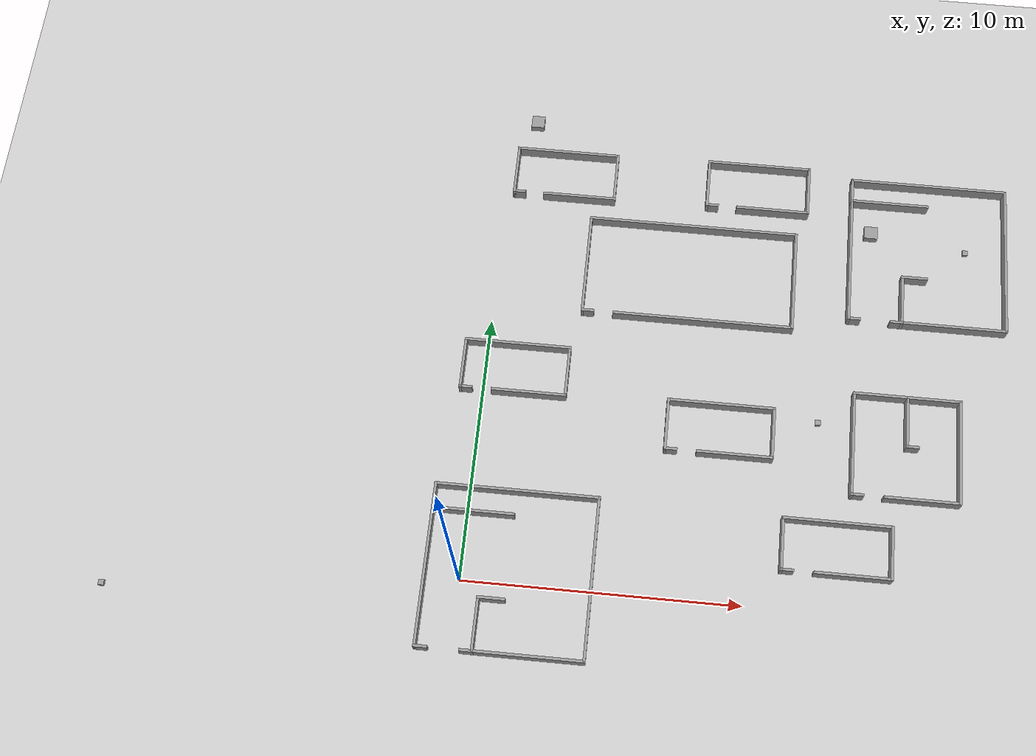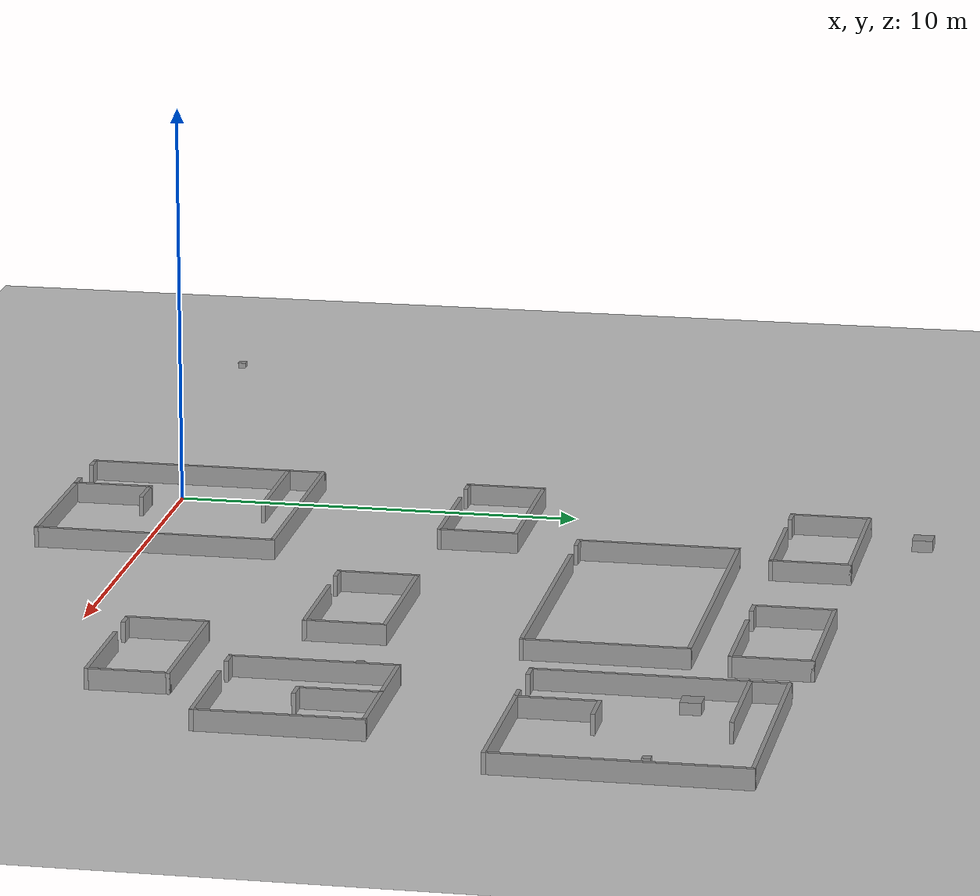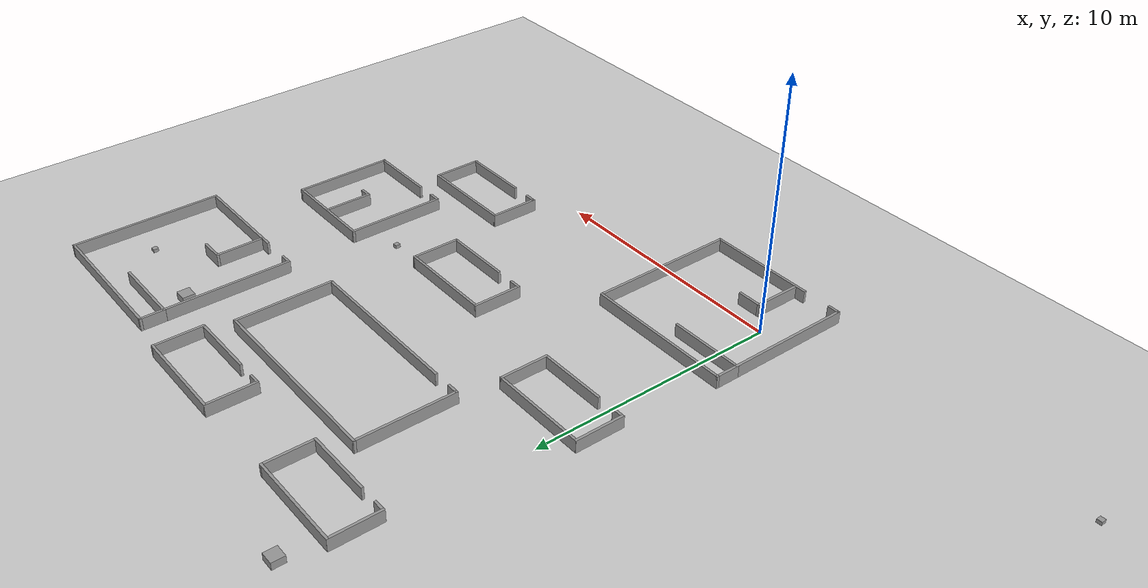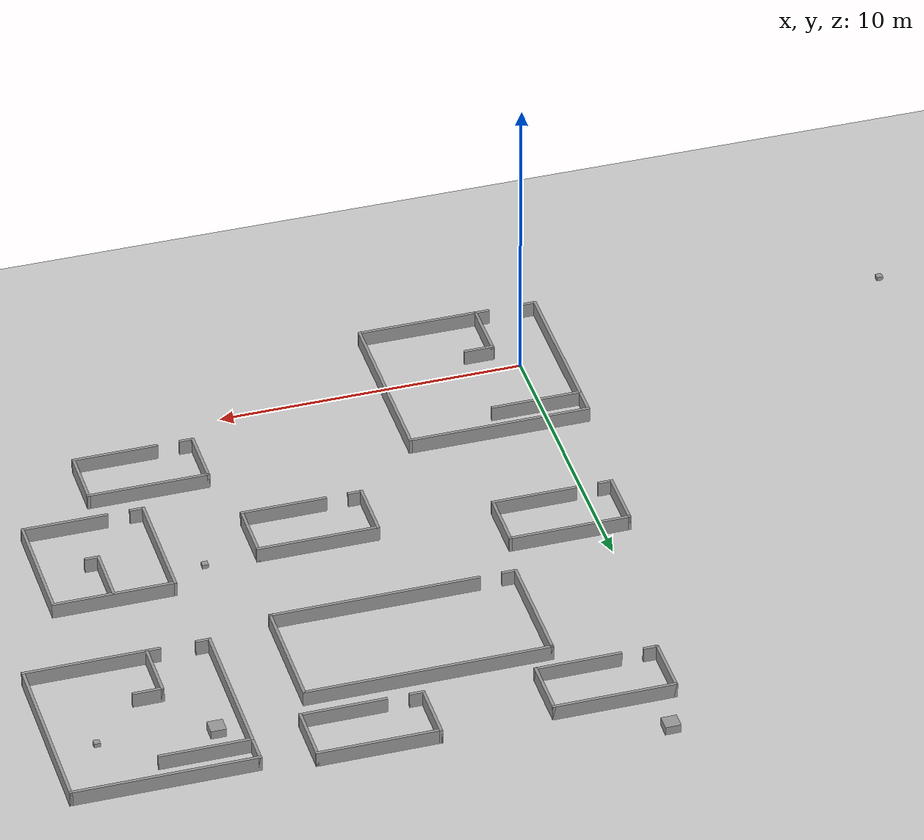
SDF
<sdf version="1.6">
 <world name="default">
  <model name="ground_plane">
   <static>1</static>
   <link name="link">
    <collision name="collision">
     <geometry><plane><normal>0 0 1</normal><size>40 40</size></plane></geometry>
     <surface>
      <contact><collide_bitmask>65535</collide_bitmask></contact>
      <friction><ode><mu>100</mu><mu2>50</mu2></ode></friction>
     </surface>
     <max_contacts>15</max_contacts>
    </collision>
    <visual name="visual">
     <cast_shadows>0</cast_shadows>
     <geometry><plane><normal>0 0 1</normal><size>40 40</size></plane></geometry>
     <material>
      <script><uri>file://media/materials/scripts/gazebo.material</uri><name>Gazebo/Grey</name></script>
     </material>
    </visual>
   </link>
  </model>
  <model name="shape3">
   <pose>7.3 12.6 0 0 -0 0</pose>
   <link name="Wall_11">
    <collision name="Wall_11_Collision">
     <geometry><box><size>4 0.1 0.5</size></box></geometry>
     <pose>0 0 0.25 0 -0 0</pose>
    </collision>
    <visual name="Wall_11_Visual">
     <pose>0 0 0.25 0 -0 0</pose>
     <geometry><box><size>4 0.1 0.5</size></box></geometry>
     <material>
      <script><uri>file://media/materials/scripts/gazebo.material</uri><name>Gazebo/Grey</name></script>
      <ambient>1 1 1 1</ambient>
     </material>
     <meta><layer>0</layer></meta>
    </visual>
    <pose>-3.95 0 0 0 -0 -1.5708</pose>
   </link>
   <link name="Wall_12">
    <collision name="Wall_12_Collision">
     <geometry><box><size>0.5 0.1 0.5</size></box></geometry>
     <pose>0 0 0.25 0 -0 0</pose>
    </collision>
    <visual name="Wall_12_Visual">
     <pose>0 0 0.25 0 -0 0</pose>
     <geometry><box><size>0.5 0.1 0.5</size></box></geometry>
     <material>
      <script><uri>file://media/materials/scripts/gazebo.material</uri><name>Gazebo/Grey</name></script>
      <ambient>1 1 1 1</ambient>
     </material>
     <meta><layer>0</layer></meta>
    </visual>
    <pose>-3.75 -1.95 0 0 -0 0</pose>
   </link>
   <link name="Wall_7">
    <collision name="Wall_7_Collision">
     <geometry><box><size>8 0.1 0.5</size></box></geometry>
     <pose>0 0 0.25 0 -0 0</pose>
    </collision>
    <visual name="Wall_7_Visual">
     <pose>0 0 0.25 0 -0 0</pose>
     <geometry><box><size>8 0.1 0.5</size></box></geometry>
     <material>
      <script><uri>file://media/materials/scripts/gazebo.material</uri><name>Gazebo/Grey</name></script>
      <ambient>1 1 1 1</ambient>
     </material>
     <meta><layer>0</layer></meta>
    </visual>
    <pose>-0 1.95 0 0 -0 0</pose>
   </link>
   <link name="Wall_8">
    <collision name="Wall_8_Collision">
     <geometry><box><size>4 0.1 0.5</size></box></geometry>
     <pose>0 0 0.25 0 -0 0</pose>
    </collision>
    <visual name="Wall_8_Visual">
     <pose>0 0 0.25 0 -0 0</pose>
     <geometry><box><size>4 0.1 0.5</size></box></geometry>
     <material>
      <script><uri>file://media/materials/scripts/gazebo.material</uri><name>Gazebo/Grey</name></script>
      <ambient>1 1 1 1</ambient>
     </material>
     <meta><layer>0</layer></meta>
    </visual>
    <pose>3.95 0 0 0 -0 -1.5708</pose>
   </link>
   <link name="Wall_9">
    <collision name="Wall_9_Collision">
     <geometry><box><size>6.8 0.1 0.5</size></box></geometry>
     <pose>0 0 0.25 0 -0 0</pose>
    </collision>
    <visual name="Wall_9_Visual">
     <pose>0 0 0.25 0 -0 0</pose>
     <geometry><box><size>6.8 0.1 0.5</size></box></geometry>
     <material>
      <script><uri>file://media/materials/scripts/gazebo.material</uri><name>Gazebo/Grey</name></script>
      <ambient>1 1 1 1</ambient>
     </material>
     <meta><layer>0</layer></meta>
    </visual>
    <pose>0.6 -1.95 0 0 -0 3.14159</pose>
   </link>
   <static>1</static>
  </model>
  <model name="shape2">
   <pose>13.2 2.3 0 0 -0 0</pose>
   <link name="Wall_0">
    <collision name="Wall_0_Collision">
     <geometry><box><size>3.98685 0.1 0.5</size></box></geometry>
     <pose>0 0 0.25 0 -0 0</pose>
    </collision>
    <visual name="Wall_0_Visual">
     <pose>0 0 0.25 0 -0 0</pose>
     <geometry><box><size>3.98685 0.1 0.5</size></box></geometry>
     <material>
      <script><uri>file://media/materials/scripts/gazebo.material</uri><name>Gazebo/Grey</name></script>
      <ambient>1 1 1 1</ambient>
     </material>
     <meta><layer>0</layer></meta>
    </visual>
    <pose>0.003288 0.95 0 0 -0 0</pose>
   </link>
   <link name="Wall_1">
    <collision name="Wall_1_Collision">
     <geometry><box><size>2 0.1 0.5</size></box></geometry>
     <pose>0 0 0.25 0 -0 0</pose>
    </collision>
    <visual name="Wall_1_Visual">
     <pose>0 0 0.25 0 -0 0</pose>
     <geometry><box><size>2 0.1 0.5</size></box></geometry>
     <material>
      <script><uri>file://media/materials/scripts/gazebo.material</uri><name>Gazebo/Grey</name></script>
      <ambient>1 1 1 1</ambient>
     </material>
     <meta><layer>0</layer></meta>
    </visual>
    <pose>1.94671 0 0 0 -0 -1.5708</pose>
   </link>
   <link name="Wall_2">
    <collision name="Wall_2_Collision">
     <geometry><box><size>2.8 0.1 0.5</size></box></geometry>
     <pose>0 0 0.25 0 -0 0</pose>
    </collision>
    <visual name="Wall_2_Visual">
     <pose>0 0 0.25 0 -0 0</pose>
     <geometry><box><size>2.8 0.1 0.5</size></box></geometry>
     <material>
      <script><uri>file://media/materials/scripts/gazebo.material</uri><name>Gazebo/Grey</name></script>
      <ambient>1 1 1 1</ambient>
     </material>
     <meta><layer>0</layer></meta>
    </visual>
    <pose>0.596712 -0.95 0 0 -0 3.14159</pose>
   </link>
   <link name="Wall_4">
    <collision name="Wall_4_Collision">
     <geometry><box><size>2 0.1 0.5</size></box></geometry>
     <pose>0 0 0.25 0 -0 0</pose>
    </collision>
    <visual name="Wall_4_Visual">
     <pose>0 0 0.25 0 -0 0</pose>
     <geometry><box><size>2 0.1 0.5</size></box></geometry>
     <material>
      <script><uri>file://media/materials/scripts/gazebo.material</uri><name>Gazebo/Grey</name></script>
      <ambient>1 1 1 1</ambient>
     </material>
     <meta><layer>0</layer></meta>
    </visual>
    <pose>-1.94671 0 0 0 -0 -1.5708</pose>
   </link>
   <link name="Wall_5">
    <collision name="Wall_5_Collision">
     <geometry><box><size>0.5 0.1 0.5</size></box></geometry>
     <pose>0 0 0.25 0 -0 0</pose>
    </collision>
    <visual name="Wall_5_Visual">
     <pose>0 0 0.25 0 -0 0</pose>
     <geometry><box><size>0.5 0.1 0.5</size></box></geometry>
     <material>
      <script><uri>file://media/materials/scripts/gazebo.material</uri><name>Gazebo/Grey</name></script>
      <ambient>1 1 1 1</ambient>
     </material>
     <meta><layer>0</layer></meta>
    </visual>
    <pose>-1.74671 -0.95 0 0 -0 0</pose>
   </link>
   <static>1</static>
  </model>
  <model name="shape5">
   <pose>1.7 0.4 0 0 -0 0</pose>
   <link name="Wall_10">
    <collision name="Wall_10_Collision">
     <geometry><box><size>6 0.1 0.5</size></box></geometry>
     <pose>0 0 0.25 0 -0 0</pose>
    </collision>
    <visual name="Wall_10_Visual">
     <pose>0 0 0.25 0 -0 0</pose>
     <geometry><box><size>6 0.1 0.5</size></box></geometry>
     <material>
      <script><uri>file://media/materials/scripts/gazebo.material</uri><name>Gazebo/Grey</name></script>
      <ambient>1 1 1 1</ambient>
     </material>
     <meta><layer>0</layer></meta>
    </visual>
    <pose>-0 2.95 0 0 -0 0</pose>
   </link>
   <link name="Wall_11">
    <collision name="Wall_11_Collision">
     <geometry><box><size>6 0.1 0.5</size></box></geometry>
     <pose>0 0 0.25 0 -0 0</pose>
    </collision>
    <visual name="Wall_11_Visual">
     <pose>0 0 0.25 0 -0 0</pose>
     <geometry><box><size>6 0.1 0.5</size></box></geometry>
     <material>
      <script><uri>file://media/materials/scripts/gazebo.material</uri><name>Gazebo/Grey</name></script>
      <ambient>1 1 1 1</ambient>
     </material>
     <meta><layer>0</layer></meta>
    </visual>
    <pose>2.95 0 0 0 -0 -1.5708</pose>
   </link>
   <link name="Wall_12">
    <collision name="Wall_12_Collision">
     <geometry><box><size>4 0.1 0.5</size></box></geometry>
     <pose>0 0 0.25 0 -0 0</pose>
    </collision>
    <visual name="Wall_12_Visual">
     <pose>0 0 0.25 0 -0 0</pose>
     <geometry><box><size>4 0.1 0.5</size></box></geometry>
     <material>
      <script><uri>file://media/materials/scripts/gazebo.material</uri><name>Gazebo/Grey</name></script>
      <ambient>1 1 1 1</ambient>
     </material>
     <meta><layer>0</layer></meta>
    </visual>
    <pose>1 -2.95 0 0 -0 3.14159</pose>
   </link>
   <link name="Wall_13">
    <collision name="Wall_13_Collision">
     <geometry><box><size>2 0.1 0.5</size></box></geometry>
     <pose>0 0 0.25 0 -0 0</pose>
    </collision>
    <visual name="Wall_13_Visual">
     <pose>0 0 0.25 0 -0 0</pose>
     <geometry><box><size>2 0.1 0.5</size></box></geometry>
     <material>
      <script><uri>file://media/materials/scripts/gazebo.material</uri><name>Gazebo/Grey</name></script>
      <ambient>1 1 1 1</ambient>
     </material>
     <meta><layer>0</layer></meta>
    </visual>
    <pose>-0.95 -2 0 0 -0 1.5708</pose>
   </link>
   <link name="Wall_14">
    <collision name="Wall_14_Collision">
     <geometry><box><size>1.00029 0.1 0.5</size></box></geometry>
     <pose>0 0 0.25 0 -0 0</pose>
    </collision>
    <visual name="Wall_14_Visual">
     <pose>0 0 0.25 0 -0 0</pose>
     <geometry><box><size>1.00029 0.1 0.5</size></box></geometry>
     <material>
      <script><uri>file://media/materials/scripts/gazebo.material</uri><name>Gazebo/Grey</name></script>
      <ambient>1 1 1 1</ambient>
     </material>
     <meta><layer>0</layer></meta>
    </visual>
    <pose>-0.5 -1.05 0 0 -0 0</pose>
   </link>
   <link name="Wall_18">
    <collision name="Wall_18_Collision">
     <geometry><box><size>1 0.1 0.5</size></box></geometry>
     <pose>0 0 0.25 0 -0 0</pose>
    </collision>
    <visual name="Wall_18_Visual">
     <pose>0 0 0.25 0 -0 0</pose>
     <geometry><box><size>1 0.1 0.5</size></box></geometry>
     <material>
      <script><uri>file://media/materials/scripts/gazebo.material</uri><name>Gazebo/Grey</name></script>
      <ambient>1 1 1 1</ambient>
     </material>
     <meta><layer>0</layer></meta>
    </visual>
    <pose>-2.95 2.5 0 0 -0 -1.5708</pose>
   </link>
   <link name="Wall_19">
    <collision name="Wall_19_Collision">
     <geometry><box><size>3 0.1 0.5</size></box></geometry>
     <pose>0 0 0.25 0 -0 0</pose>
    </collision>
    <visual name="Wall_19_Visual">
     <pose>0 0 0.25 0 -0 0</pose>
     <geometry><box><size>3 0.1 0.5</size></box></geometry>
     <material>
      <script><uri>file://media/materials/scripts/gazebo.material</uri><name>Gazebo/Grey</name></script>
      <ambient>1 1 1 1</ambient>
     </material>
     <meta><layer>0</layer></meta>
    </visual>
    <pose>-1.5 2.05 0 0 -0 0</pose>
   </link>
   <link name="Wall_21">
    <collision name="Wall_21_Collision">
     <geometry><box><size>5.1 0.1 0.5</size></box></geometry>
     <pose>0 0 0.25 0 -0 0</pose>
    </collision>
    <visual name="Wall_21_Visual">
     <pose>0 0 0.25 0 -0 0</pose>
     <geometry><box><size>5.1 0.1 0.5</size></box></geometry>
     <material>
      <script><uri>file://media/materials/scripts/gazebo.material</uri><name>Gazebo/Grey</name></script>
      <ambient>1 1 1 1</ambient>
     </material>
     <meta><layer>0</layer></meta>
    </visual>
    <pose>-2.95 -0.45 0 0 -0 -1.5708</pose>
   </link>
   <link name="Wall_22">
    <collision name="Wall_22_Collision">
     <geometry><box><size>0.5 0.1 0.5</size></box></geometry>
     <pose>0 0 0.25 0 -0 0</pose>
    </collision>
    <visual name="Wall_22_Visual">
     <pose>0 0 0.25 0 -0 0</pose>
     <geometry><box><size>0.5 0.1 0.5</size></box></geometry>
     <material>
      <script><uri>file://media/materials/scripts/gazebo.material</uri><name>Gazebo/Grey</name></script>
      <ambient>1 1 1 1</ambient>
     </material>
     <meta><layer>0</layer></meta>
    </visual>
    <pose>-2.75 -2.95 0 0 -0 0</pose>
   </link>
   <link name="Wall_24">
    <collision name="Wall_24_Collision">
     <geometry><box><size>0.5 0.1 0.5</size></box></geometry>
     <pose>0 0 0.25 0 -0 0</pose>
    </collision>
    <visual name="Wall_24_Visual">
     <pose>0 0 0.25 0 -0 0</pose>
     <geometry><box><size>0.5 0.1 0.5</size></box></geometry>
     <material>
      <script><uri>file://media/materials/scripts/gazebo.material</uri><name>Gazebo/Grey</name></script>
      <ambient>1 1 1 1</ambient>
     </material>
     <meta><layer>0</layer></meta>
    </visual>
    <pose>-1.15 -2.95 0 0 -0 3.14159</pose>
   </link>
   <static>1</static>
  </model>
  <model name="shape2">
   <pose>9.7 16.5 0 0 -0 0</pose>
   <link name="Wall_0">
    <collision name="Wall_0_Collision">
     <geometry><box><size>3.98685 0.1 0.5</size></box></geometry>
     <pose>0 0 0.25 0 -0 0</pose>
    </collision>
    <visual name="Wall_0_Visual">
     <pose>0 0 0.25 0 -0 0</pose>
     <geometry><box><size>3.98685 0.1 0.5</size></box></geometry>
     <material>
      <script><uri>file://media/materials/scripts/gazebo.material</uri><name>Gazebo/Grey</name></script>
      <ambient>1 1 1 1</ambient>
     </material>
     <meta><layer>0</layer></meta>
    </visual>
    <pose>0.003288 0.95 0 0 -0 0</pose>
   </link>
   <link name="Wall_1">
    <collision name="Wall_1_Collision">
     <geometry><box><size>2 0.1 0.5</size></box></geometry>
     <pose>0 0 0.25 0 -0 0</pose>
    </collision>
    <visual name="Wall_1_Visual">
     <pose>0 0 0.25 0 -0 0</pose>
     <geometry><box><size>2 0.1 0.5</size></box></geometry>
     <material>
      <script><uri>file://media/materials/scripts/gazebo.material</uri><name>Gazebo/Grey</name></script>
      <ambient>1 1 1 1</ambient>
     </material>
     <meta><layer>0</layer></meta>
    </visual>
    <pose>1.94671 0 0 0 -0 -1.5708</pose>
   </link>
   <link name="Wall_2">
    <collision name="Wall_2_Collision">
     <geometry><box><size>2.8 0.1 0.5</size></box></geometry>
     <pose>0 0 0.25 0 -0 0</pose>
    </collision>
    <visual name="Wall_2_Visual">
     <pose>0 0 0.25 0 -0 0</pose>
     <geometry><box><size>2.8 0.1 0.5</size></box></geometry>
     <material>
      <script><uri>file://media/materials/scripts/gazebo.material</uri><name>Gazebo/Grey</name></script>
      <ambient>1 1 1 1</ambient>
     </material>
     <meta><layer>0</layer></meta>
    </visual>
    <pose>0.596712 -0.95 0 0 -0 3.14159</pose>
   </link>
   <link name="Wall_4">
    <collision name="Wall_4_Collision">
     <geometry><box><size>2 0.1 0.5</size></box></geometry>
     <pose>0 0 0.25 0 -0 0</pose>
    </collision>
    <visual name="Wall_4_Visual">
     <pose>0 0 0.25 0 -0 0</pose>
     <geometry><box><size>2 0.1 0.5</size></box></geometry>
     <material>
      <script><uri>file://media/materials/scripts/gazebo.material</uri><name>Gazebo/Grey</name></script>
      <ambient>1 1 1 1</ambient>
     </material>
     <meta><layer>0</layer></meta>
    </visual>
    <pose>-1.94671 0 0 0 -0 -1.5708</pose>
   </link>
   <link name="Wall_5">
    <collision name="Wall_5_Collision">
     <geometry><box><size>0.5 0.1 0.5</size></box></geometry>
     <pose>0 0 0.25 0 -0 0</pose>
    </collision>
    <visual name="Wall_5_Visual">
     <pose>0 0 0.25 0 -0 0</pose>
     <geometry><box><size>0.5 0.1 0.5</size></box></geometry>
     <material>
      <script><uri>file://media/materials/scripts/gazebo.material</uri><name>Gazebo/Grey</name></script>
      <ambient>1 1 1 1</ambient>
     </material>
     <meta><layer>0</layer></meta>
    </visual>
    <pose>-1.74671 -0.95 0 0 -0 0</pose>
   </link>
   <static>1</static>
  </model>
  <model name="shape2">
   <pose>1.1 8.1 0 0 -0 0</pose>
   <link name="Wall_0">
    <collision name="Wall_0_Collision">
     <geometry><box><size>3.98685 0.1 0.5</size></box></geometry>
     <pose>0 0 0.25 0 -0 0</pose>
    </collision>
    <visual name="Wall_0_Visual">
     <pose>0 0 0.25 0 -0 0</pose>
     <geometry><box><size>3.98685 0.1 0.5</size></box></geometry>
     <material>
      <script><uri>file://media/materials/scripts/gazebo.material</uri><name>Gazebo/Grey</name></script>
      <ambient>1 1 1 1</ambient>
     </material>
     <meta><layer>0</layer></meta>
    </visual>
    <pose>0.003288 0.95 0 0 -0 0</pose>
   </link>
   <link name="Wall_1">
    <collision name="Wall_1_Collision">
     <geometry><box><size>2 0.1 0.5</size></box></geometry>
     <pose>0 0 0.25 0 -0 0</pose>
    </collision>
    <visual name="Wall_1_Visual">
     <pose>0 0 0.25 0 -0 0</pose>
     <geometry><box><size>2 0.1 0.5</size></box></geometry>
     <material>
      <script><uri>file://media/materials/scripts/gazebo.material</uri><name>Gazebo/Grey</name></script>
      <ambient>1 1 1 1</ambient>
     </material>
     <meta><layer>0</layer></meta>
    </visual>
    <pose>1.94671 0 0 0 -0 -1.5708</pose>
   </link>
   <link name="Wall_2">
    <collision name="Wall_2_Collision">
     <geometry><box><size>2.8 0.1 0.5</size></box></geometry>
     <pose>0 0 0.25 0 -0 0</pose>
    </collision>
    <visual name="Wall_2_Visual">
     <pose>0 0 0.25 0 -0 0</pose>
     <geometry><box><size>2.8 0.1 0.5</size></box></geometry>
     <material>
      <script><uri>file://media/materials/scripts/gazebo.material</uri><name>Gazebo/Grey</name></script>
      <ambient>1 1 1 1</ambient>
     </material>
     <meta><layer>0</layer></meta>
    </visual>
    <pose>0.596712 -0.95 0 0 -0 3.14159</pose>
   </link>
   <link name="Wall_4">
    <collision name="Wall_4_Collision">
     <geometry><box><size>2 0.1 0.5</size></box></geometry>
     <pose>0 0 0.25 0 -0 0</pose>
    </collision>
    <visual name="Wall_4_Visual">
     <pose>0 0 0.25 0 -0 0</pose>
     <geometry><box><size>2 0.1 0.5</size></box></geometry>
     <material>
      <script><uri>file://media/materials/scripts/gazebo.material</uri><name>Gazebo/Grey</name></script>
      <ambient>1 1 1 1</ambient>
     </material>
     <meta><layer>0</layer></meta>
    </visual>
    <pose>-1.94671 0 0 0 -0 -1.5708</pose>
   </link>
   <link name="Wall_5">
    <collision name="Wall_5_Collision">
     <geometry><box><size>0.5 0.1 0.5</size></box></geometry>
     <pose>0 0 0.25 0 -0 0</pose>
    </collision>
    <visual name="Wall_5_Visual">
     <pose>0 0 0.25 0 -0 0</pose>
     <geometry><box><size>0.5 0.1 0.5</size></box></geometry>
     <material>
      <script><uri>file://media/materials/scripts/gazebo.material</uri><name>Gazebo/Grey</name></script>
      <ambient>1 1 1 1</ambient>
     </material>
     <meta><layer>0</layer></meta>
    </visual>
    <pose>-1.74671 -0.95 0 0 -0 0</pose>
   </link>
   <static>1</static>
  </model>
  <model name="shape2">
   <pose>8.8 6.4 0 0 -0 0</pose>
   <link name="Wall_0">
    <collision name="Wall_0_Collision">
     <geometry><box><size>3.98685 0.1 0.5</size></box></geometry>
     <pose>0 0 0.25 0 -0 0</pose>
    </collision>
    <visual name="Wall_0_Visual">
     <pose>0 0 0.25 0 -0 0</pose>
     <geometry><box><size>3.98685 0.1 0.5</size></box></geometry>
     <material>
      <script><uri>file://media/materials/scripts/gazebo.material</uri><name>Gazebo/Grey</name></script>
      <ambient>1 1 1 1</ambient>
     </material>
     <meta><layer>0</layer></meta>
    </visual>
    <pose>0.003288 0.95 0 0 -0 0</pose>
   </link>
   <link name="Wall_1">
    <collision name="Wall_1_Collision">
     <geometry><box><size>2 0.1 0.5</size></box></geometry>
     <pose>0 0 0.25 0 -0 0</pose>
    </collision>
    <visual name="Wall_1_Visual">
     <pose>0 0 0.25 0 -0 0</pose>
     <geometry><box><size>2 0.1 0.5</size></box></geometry>
     <material>
      <script><uri>file://media/materials/scripts/gazebo.material</uri><name>Gazebo/Grey</name></script>
      <ambient>1 1 1 1</ambient>
     </material>
     <meta><layer>0</layer></meta>
    </visual>
    <pose>1.94671 0 0 0 -0 -1.5708</pose>
   </link>
   <link name="Wall_2">
    <collision name="Wall_2_Collision">
     <geometry><box><size>2.8 0.1 0.5</size></box></geometry>
     <pose>0 0 0.25 0 -0 0</pose>
    </collision>
    <visual name="Wall_2_Visual">
     <pose>0 0 0.25 0 -0 0</pose>
     <geometry><box><size>2.8 0.1 0.5</size></box></geometry>
     <material>
      <script><uri>file://media/materials/scripts/gazebo.material</uri><name>Gazebo/Grey</name></script>
      <ambient>1 1 1 1</ambient>
     </material>
     <meta><layer>0</layer></meta>
    </visual>
    <pose>0.596712 -0.95 0 0 -0 3.14159</pose>
   </link>
   <link name="Wall_4">
    <collision name="Wall_4_Collision">
     <geometry><box><size>2 0.1 0.5</size></box></geometry>
     <pose>0 0 0.25 0 -0 0</pose>
    </collision>
    <visual name="Wall_4_Visual">
     <pose>0 0 0.25 0 -0 0</pose>
     <geometry><box><size>2 0.1 0.5</size></box></geometry>
     <material>
      <script><uri>file://media/materials/scripts/gazebo.material</uri><name>Gazebo/Grey</name></script>
      <ambient>1 1 1 1</ambient>
     </material>
     <meta><layer>0</layer></meta>
    </visual>
    <pose>-1.94671 0 0 0 -0 -1.5708</pose>
   </link>
   <link name="Wall_5">
    <collision name="Wall_5_Collision">
     <geometry><box><size>0.5 0.1 0.5</size></box></geometry>
     <pose>0 0 0.25 0 -0 0</pose>
    </collision>
    <visual name="Wall_5_Visual">
     <pose>0 0 0.25 0 -0 0</pose>
     <geometry><box><size>0.5 0.1 0.5</size></box></geometry>
     <material>
      <script><uri>file://media/materials/scripts/gazebo.material</uri><name>Gazebo/Grey</name></script>
      <ambient>1 1 1 1</ambient>
     </material>
     <meta><layer>0</layer></meta>
    </visual>
    <pose>-1.74671 -0.95 0 0 -0 0</pose>
   </link>
   <static>1</static>
  </model>
  <model name="shape4">
   <pose>15.6 6.3 0 0 -0 0</pose>
   <link name="Wall_0">
    <collision name="Wall_0_Collision">
     <geometry><box><size>4 0.1 0.5</size></box></geometry>
     <pose>0 0 0.25 0 -0 0</pose>
    </collision>
    <visual name="Wall_0_Visual">
     <pose>0 0 0.25 0 -0 0</pose>
     <geometry><box><size>4 0.1 0.5</size></box></geometry>
     <material>
      <script><uri>file://media/materials/scripts/gazebo.material</uri><name>Gazebo/Grey</name></script>
      <ambient>1 1 1 1</ambient>
     </material>
     <meta><layer>0</layer></meta>
    </visual>
    <pose>-1.95 0 0 0 -0 -1.5708</pose>
   </link>
   <link name="Wall_1">
    <collision name="Wall_1_Collision">
     <geometry><box><size>0.5 0.1 0.5</size></box></geometry>
     <pose>0 0 0.25 0 -0 0</pose>
    </collision>
    <visual name="Wall_1_Visual">
     <pose>0 0 0.25 0 -0 0</pose>
     <geometry><box><size>0.5 0.1 0.5</size></box></geometry>
     <material>
      <script><uri>file://media/materials/scripts/gazebo.material</uri><name>Gazebo/Grey</name></script>
      <ambient>1 1 1 1</ambient>
     </material>
     <meta><layer>0</layer></meta>
    </visual>
    <pose>-1.75 -1.95 0 0 -0 0</pose>
   </link>
   <link name="Wall_3">
    <collision name="Wall_3_Collision">
     <geometry><box><size>4 0.1 0.5</size></box></geometry>
     <pose>0 0 0.25 0 -0 0</pose>
    </collision>
    <visual name="Wall_3_Visual">
     <pose>0 0 0.25 0 -0 0</pose>
     <geometry><box><size>4 0.1 0.5</size></box></geometry>
     <material>
      <script><uri>file://media/materials/scripts/gazebo.material</uri><name>Gazebo/Grey</name></script>
      <ambient>1 1 1 1</ambient>
     </material>
     <meta><layer>0</layer></meta>
    </visual>
    <pose>0 1.95 0 0 -0 0</pose>
   </link>
   <link name="Wall_4">
    <collision name="Wall_4_Collision">
     <geometry><box><size>4 0.1 0.5</size></box></geometry>
     <pose>0 0 0.25 0 -0 0</pose>
    </collision>
    <visual name="Wall_4_Visual">
     <pose>0 0 0.25 0 -0 0</pose>
     <geometry><box><size>4 0.1 0.5</size></box></geometry>
     <material>
      <script><uri>file://media/materials/scripts/gazebo.material</uri><name>Gazebo/Grey</name></script>
      <ambient>1 1 1 1</ambient>
     </material>
     <meta><layer>0</layer></meta>
    </visual>
    <pose>1.95 0 0 0 -0 -1.5708</pose>
   </link>
   <link name="Wall_5">
    <collision name="Wall_5_Collision">
     <geometry><box><size>2.8 0.1 0.5</size></box></geometry>
     <pose>0 0 0.25 0 -0 0</pose>
    </collision>
    <visual name="Wall_5_Visual">
     <pose>0 0 0.25 0 -0 0</pose>
     <geometry><box><size>2.8 0.1 0.5</size></box></geometry>
     <material>
      <script><uri>file://media/materials/scripts/gazebo.material</uri><name>Gazebo/Grey</name></script>
      <ambient>1 1 1 1</ambient>
     </material>
     <meta><layer>0</layer></meta>
    </visual>
    <pose>0.6 -1.95 0 0 -0 3.14159</pose>
   </link>
   <link name="Wall_7">
    <collision name="Wall_7_Collision">
     <geometry><box><size>2 0.1 0.5</size></box></geometry>
     <pose>0 0 0.25 0 -0 0</pose>
    </collision>
    <visual name="Wall_7_Visual">
     <pose>0 0 0.25 0 -0 0</pose>
     <geometry><box><size>2 0.1 0.5</size></box></geometry>
     <material>
      <script><uri>file://media/materials/scripts/gazebo.material</uri><name>Gazebo/Grey</name></script>
      <ambient>1 1 1 1</ambient>
     </material>
     <meta><layer>0</layer></meta>
    </visual>
    <pose>0.015 0.991 0 0 -0 -1.5708</pose>
   </link>
   <link name="Wall_8">
    <collision name="Wall_8_Collision">
     <geometry><box><size>0.5 0.1 0.5</size></box></geometry>
     <pose>0 0 0.25 0 -0 0</pose>
    </collision>
    <visual name="Wall_8_Visual">
     <pose>0 0 0.25 0 -0 0</pose>
     <geometry><box><size>0.5 0.1 0.5</size></box></geometry>
     <material>
      <script><uri>file://media/materials/scripts/gazebo.material</uri><name>Gazebo/Grey</name></script>
      <ambient>1 1 1 1</ambient>
     </material>
     <meta><layer>0</layer></meta>
    </visual>
    <pose>0.215 0.041 0 0 -0 0</pose>
   </link>
   <static>1</static>
  </model>
  <model name="shape2">
   <pose>2.2 16.4 0 0 -0 0</pose>
   <link name="Wall_0">
    <collision name="Wall_0_Collision">
     <geometry><box><size>3.98685 0.1 0.5</size></box></geometry>
     <pose>0 0 0.25 0 -0 0</pose>
    </collision>
    <visual name="Wall_0_Visual">
     <pose>0 0 0.25 0 -0 0</pose>
     <geometry><box><size>3.98685 0.1 0.5</size></box></geometry>
     <material>
      <script><uri>file://media/materials/scripts/gazebo.material</uri><name>Gazebo/Grey</name></script>
      <ambient>1 1 1 1</ambient>
     </material>
     <meta><layer>0</layer></meta>
    </visual>
    <pose>0.003288 0.95 0 0 -0 0</pose>
   </link>
   <link name="Wall_1">
    <collision name="Wall_1_Collision">
     <geometry><box><size>2 0.1 0.5</size></box></geometry>
     <pose>0 0 0.25 0 -0 0</pose>
    </collision>
    <visual name="Wall_1_Visual">
     <pose>0 0 0.25 0 -0 0</pose>
     <geometry><box><size>2 0.1 0.5</size></box></geometry>
     <material>
      <script><uri>file://media/materials/scripts/gazebo.material</uri><name>Gazebo/Grey</name></script>
      <ambient>1 1 1 1</ambient>
     </material>
     <meta><layer>0</layer></meta>
    </visual>
    <pose>1.94671 0 0 0 -0 -1.5708</pose>
   </link>
   <link name="Wall_2">
    <collision name="Wall_2_Collision">
     <geometry><box><size>2.8 0.1 0.5</size></box></geometry>
     <pose>0 0 0.25 0 -0 0</pose>
    </collision>
    <visual name="Wall_2_Visual">
     <pose>0 0 0.25 0 -0 0</pose>
     <geometry><box><size>2.8 0.1 0.5</size></box></geometry>
     <material>
      <script><uri>file://media/materials/scripts/gazebo.material</uri><name>Gazebo/Grey</name></script>
      <ambient>1 1 1 1</ambient>
     </material>
     <meta><layer>0</layer></meta>
    </visual>
    <pose>0.596712 -0.95 0 0 -0 3.14159</pose>
   </link>
   <link name="Wall_4">
    <collision name="Wall_4_Collision">
     <geometry><box><size>2 0.1 0.5</size></box></geometry>
     <pose>0 0 0.25 0 -0 0</pose>
    </collision>
    <visual name="Wall_4_Visual">
     <pose>0 0 0.25 0 -0 0</pose>
     <geometry><box><size>2 0.1 0.5</size></box></geometry>
     <material>
      <script><uri>file://media/materials/scripts/gazebo.material</uri><name>Gazebo/Grey</name></script>
      <ambient>1 1 1 1</ambient>
     </material>
     <meta><layer>0</layer></meta>
    </visual>
    <pose>-1.94671 0 0 0 -0 -1.5708</pose>
   </link>
   <link name="Wall_5">
    <collision name="Wall_5_Collision">
     <geometry><box><size>0.5 0.1 0.5</size></box></geometry>
     <pose>0 0 0.25 0 -0 0</pose>
    </collision>
    <visual name="Wall_5_Visual">
     <pose>0 0 0.25 0 -0 0</pose>
     <geometry><box><size>0.5 0.1 0.5</size></box></geometry>
     <material>
      <script><uri>file://media/materials/scripts/gazebo.material</uri><name>Gazebo/Grey</name></script>
      <ambient>1 1 1 1</ambient>
     </material>
     <meta><layer>0</layer></meta>
    </visual>
    <pose>-1.74671 -0.95 0 0 -0 0</pose>
   </link>
   <static>1</static>
  </model>
  <model name="shape5">
   <pose>16.3 14.2 0 0 -0 0</pose>
   <link name="Wall_10">
    <collision name="Wall_10_Collision">
     <geometry><box><size>6 0.1 0.5</size></box></geometry>
     <pose>0 0 0.25 0 -0 0</pose>
    </collision>
    <visual name="Wall_10_Visual">
     <pose>0 0 0.25 0 -0 0</pose>
     <geometry><box><size>6 0.1 0.5</size></box></geometry>
     <material>
      <script><uri>file://media/materials/scripts/gazebo.material</uri><name>Gazebo/Grey</name></script>
      <ambient>1 1 1 1</ambient>
     </material>
     <meta><layer>0</layer></meta>
    </visual>
    <pose>-0 2.95 0 0 -0 0</pose>
   </link>
   <link name="Wall_11">
    <collision name="Wall_11_Collision">
     <geometry><box><size>6 0.1 0.5</size></box></geometry>
     <pose>0 0 0.25 0 -0 0</pose>
    </collision>
    <visual name="Wall_11_Visual">
     <pose>0 0 0.25 0 -0 0</pose>
     <geometry><box><size>6 0.1 0.5</size></box></geometry>
     <material>
      <script><uri>file://media/materials/scripts/gazebo.material</uri><name>Gazebo/Grey</name></script>
      <ambient>1 1 1 1</ambient>
     </material>
     <meta><layer>0</layer></meta>
    </visual>
    <pose>2.95 0 0 0 -0 -1.5708</pose>
   </link>
   <link name="Wall_12">
    <collision name="Wall_12_Collision">
     <geometry><box><size>4 0.1 0.5</size></box></geometry>
     <pose>0 0 0.25 0 -0 0</pose>
    </collision>
    <visual name="Wall_12_Visual">
     <pose>0 0 0.25 0 -0 0</pose>
     <geometry><box><size>4 0.1 0.5</size></box></geometry>
     <material>
      <script><uri>file://media/materials/scripts/gazebo.material</uri><name>Gazebo/Grey</name></script>
      <ambient>1 1 1 1</ambient>
     </material>
     <meta><layer>0</layer></meta>
    </visual>
    <pose>1 -2.95 0 0 -0 3.14159</pose>
   </link>
   <link name="Wall_13">
    <collision name="Wall_13_Collision">
     <geometry><box><size>2 0.1 0.5</size></box></geometry>
     <pose>0 0 0.25 0 -0 0</pose>
    </collision>
    <visual name="Wall_13_Visual">
     <pose>0 0 0.25 0 -0 0</pose>
     <geometry><box><size>2 0.1 0.5</size></box></geometry>
     <material>
      <script><uri>file://media/materials/scripts/gazebo.material</uri><name>Gazebo/Grey</name></script>
      <ambient>1 1 1 1</ambient>
     </material>
     <meta><layer>0</layer></meta>
    </visual>
    <pose>-0.95 -2 0 0 -0 1.5708</pose>
   </link>
   <link name="Wall_14">
    <collision name="Wall_14_Collision">
     <geometry><box><size>1.00029 0.1 0.5</size></box></geometry>
     <pose>0 0 0.25 0 -0 0</pose>
    </collision>
    <visual name="Wall_14_Visual">
     <pose>0 0 0.25 0 -0 0</pose>
     <geometry><box><size>1.00029 0.1 0.5</size></box></geometry>
     <material>
      <script><uri>file://media/materials/scripts/gazebo.material</uri><name>Gazebo/Grey</name></script>
      <ambient>1 1 1 1</ambient>
     </material>
     <meta><layer>0</layer></meta>
    </visual>
    <pose>-0.5 -1.05 0 0 -0 0</pose>
   </link>
   <link name="Wall_18">
    <collision name="Wall_18_Collision">
     <geometry><box><size>1 0.1 0.5</size></box></geometry>
     <pose>0 0 0.25 0 -0 0</pose>
    </collision>
    <visual name="Wall_18_Visual">
     <pose>0 0 0.25 0 -0 0</pose>
     <geometry><box><size>1 0.1 0.5</size></box></geometry>
     <material>
      <script><uri>file://media/materials/scripts/gazebo.material</uri><name>Gazebo/Grey</name></script>
      <ambient>1 1 1 1</ambient>
     </material>
     <meta><layer>0</layer></meta>
    </visual>
    <pose>-2.95 2.5 0 0 -0 -1.5708</pose>
   </link>
   <link name="Wall_19">
    <collision name="Wall_19_Collision">
     <geometry><box><size>3 0.1 0.5</size></box></geometry>
     <pose>0 0 0.25 0 -0 0</pose>
    </collision>
    <visual name="Wall_19_Visual">
     <pose>0 0 0.25 0 -0 0</pose>
     <geometry><box><size>3 0.1 0.5</size></box></geometry>
     <material>
      <script><uri>file://media/materials/scripts/gazebo.material</uri><name>Gazebo/Grey</name></script>
      <ambient>1 1 1 1</ambient>
     </material>
     <meta><layer>0</layer></meta>
    </visual>
    <pose>-1.5 2.05 0 0 -0 0</pose>
   </link>
   <link name="Wall_21">
    <collision name="Wall_21_Collision">
     <geometry><box><size>5.1 0.1 0.5</size></box></geometry>
     <pose>0 0 0.25 0 -0 0</pose>
    </collision>
    <visual name="Wall_21_Visual">
     <pose>0 0 0.25 0 -0 0</pose>
     <geometry><box><size>5.1 0.1 0.5</size></box></geometry>
     <material>
      <script><uri>file://media/materials/scripts/gazebo.material</uri><name>Gazebo/Grey</name></script>
      <ambient>1 1 1 1</ambient>
     </material>
     <meta><layer>0</layer></meta>
    </visual>
    <pose>-2.95 -0.45 0 0 -0 -1.5708</pose>
   </link>
   <link name="Wall_22">
    <collision name="Wall_22_Collision">
     <geometry><box><size>0.5 0.1 0.5</size></box></geometry>
     <pose>0 0 0.25 0 -0 0</pose>
    </collision>
    <visual name="Wall_22_Visual">
     <pose>0 0 0.25 0 -0 0</pose>
     <geometry><box><size>0.5 0.1 0.5</size></box></geometry>
     <material>
      <script><uri>file://media/materials/scripts/gazebo.material</uri><name>Gazebo/Grey</name></script>
      <ambient>1 1 1 1</ambient>
     </material>
     <meta><layer>0</layer></meta>
    </visual>
    <pose>-2.75 -2.95 0 0 -0 0</pose>
   </link>
   <link name="Wall_24">
    <collision name="Wall_24_Collision">
     <geometry><box><size>0.5 0.1 0.5</size></box></geometry>
     <pose>0 0 0.25 0 -0 0</pose>
    </collision>
    <visual name="Wall_24_Visual">
     <pose>0 0 0.25 0 -0 0</pose>
     <geometry><box><size>0.5 0.1 0.5</size></box></geometry>
     <material>
      <script><uri>file://media/materials/scripts/gazebo.material</uri><name>Gazebo/Grey</name></script>
      <ambient>1 1 1 1</ambient>
     </material>
     <meta><layer>0</layer></meta>
    </visual>
    <pose>-1.15 -2.95 0 0 -0 3.14159</pose>
   </link>
   <static>1</static>
  </model>
  <model name="box_d=50">
   <link name="link_2">
    <inertial>
     <mass>1</mass>
     <inertia>
      <ixx>0.166667</ixx>
      <ixy>0</ixy>
      <ixz>0</ixz>
      <iyy>0.166667</iyy>
      <iyz>0</iyz>
      <izz>0.166667</izz>
     </inertia>
    </inertial>
    <pose>14.15 15.05 0 0 -0 0</pose>
    <visual name="visual">
     <geometry><box><size>0.5 0.5 0.5</size></box></geometry>
     <material>
      <lighting>1</lighting>
      <script><uri>file://media/materials/scripts/gazebo.material</uri><name>Gazebo/Grey</name></script>
      <shader type="vertex"><normal_map>__default__</normal_map></shader>
      <ambient>0.3 0.3 0.3 1</ambient>
      <diffuse>0.7 0.7 0.7 1</diffuse>
      <specular>0.01 0.01 0.01 1</specular>
      <emissive>0 0 0 1</emissive>
     </material>
    </visual>
    <collision name="collision">
     <geometry><box><size>0.5 0.5 0.5</size></box></geometry>
     <surface>
      <friction>
       <ode><mu>1</mu><mu2>1</mu2><fdir1>0 0 0</fdir1><slip1>0</slip1><slip2>0</slip2></ode>
       <torsional>
        <coefficient>1</coefficient>
        <patch_radius>0</patch_radius>
        <surface_radius>0</surface_radius>
        <use_patch_radius>1</use_patch_radius>
        <ode><slip>0</slip></ode>
       </torsional>
      </friction>
      <bounce><restitution_coefficient>0</restitution_coefficient><threshold>1e+06</threshold></bounce>
      <contact>
       <collide_without_contact>0</collide_without_contact>
       <collide_without_contact_bitmask>1</collide_without_contact_bitmask>
       <collide_bitmask>1</collide_bitmask>
       <ode>
        <soft_cfm>0</soft_cfm>
        <soft_erp>0.2</soft_erp>
        <kp>1e+13</kp>
        <kd>1</kd>
        <max_vel>0.01</max_vel>
        <min_depth>0</min_depth>
       </ode>
       <bullet>
        <split_impulse>1</split_impulse>
        <split_impulse_penetration_threshold>-0.01</split_impulse_penetration_threshold>
        <soft_cfm>0</soft_cfm>
        <soft_erp>0.2</soft_erp>
        <kp>1e+13</kp>
        <kd>1</kd>
       </bullet>
      </contact>
     </surface>
    </collision>
   </link>
   <static>0</static>
  </model>
  <model name="box_d=50">
   <link name="link_2">
    <inertial>
     <mass>1</mass>
     <inertia>
      <ixx>0.166667</ixx>
      <ixy>0</ixy>
      <ixz>0</ixz>
      <iyy>0.166667</iyy>
      <iyz>0</iyz>
      <izz>0.166667</izz>
     </inertia>
    </inertial>
    <pose>0.85 18.75 0 0 -0 0</pose>
    <visual name="visual">
     <geometry><box><size>0.5 0.5 0.5</size></box></geometry>
     <material>
      <lighting>1</lighting>
      <script><uri>file://media/materials/scripts/gazebo.material</uri><name>Gazebo/Grey</name></script>
      <shader type="vertex"><normal_map>__default__</normal_map></shader>
      <ambient>0.3 0.3 0.3 1</ambient>
      <diffuse>0.7 0.7 0.7 1</diffuse>
      <specular>0.01 0.01 0.01 1</specular>
      <emissive>0 0 0 1</emissive>
     </material>
    </visual>
    <collision name="collision">
     <geometry><box><size>0.5 0.5 0.5</size></box></geometry>
     <surface>
      <friction>
       <ode><mu>1</mu><mu2>1</mu2><fdir1>0 0 0</fdir1><slip1>0</slip1><slip2>0</slip2></ode>
       <torsional>
        <coefficient>1</coefficient>
        <patch_radius>0</patch_radius>
        <surface_radius>0</surface_radius>
        <use_patch_radius>1</use_patch_radius>
        <ode><slip>0</slip></ode>
       </torsional>
      </friction>
      <bounce><restitution_coefficient>0</restitution_coefficient><threshold>1e+06</threshold></bounce>
      <contact>
       <collide_without_contact>0</collide_without_contact>
       <collide_without_contact_bitmask>1</collide_without_contact_bitmask>
       <collide_bitmask>1</collide_bitmask>
       <ode>
        <soft_cfm>0</soft_cfm>
        <soft_erp>0.2</soft_erp>
        <kp>1e+13</kp>
        <kd>1</kd>
        <max_vel>0.01</max_vel>
        <min_depth>0</min_depth>
       </ode>
       <bullet>
        <split_impulse>1</split_impulse>
        <split_impulse_penetration_threshold>-0.01</split_impulse_penetration_threshold>
        <soft_cfm>0</soft_cfm>
        <soft_erp>0.2</soft_erp>
        <kp>1e+13</kp>
        <kd>1</kd>
       </bullet>
      </contact>
     </surface>
    </collision>
   </link>
   <static>0</static>
  </model>
  <model name="box_d=20">
   <link name="link_2">
    <inertial>
     <mass>1</mass>
     <inertia>
      <ixx>0.166667</ixx>
      <ixy>0</ixy>
      <ixz>0</ixz>
      <iyy>0.166667</iyy>
      <iyz>0</iyz>
      <izz>0.166667</izz>
     </inertia>
    </inertial>
    <pose>12.4 7.1 0 0 -0 0</pose>
    <visual name="visual">
     <geometry><box><size>0.2 0.2 0.2</size></box></geometry>
     <material>
      <lighting>1</lighting>
      <script><uri>file://media/materials/scripts/gazebo.material</uri><name>Gazebo/Grey</name></script>
      <shader type="vertex"><normal_map>__default__</normal_map></shader>
      <ambient>0.3 0.3 0.3 1</ambient>
      <diffuse>0.7 0.7 0.7 1</diffuse>
      <specular>0.01 0.01 0.01 1</specular>
      <emissive>0 0 0 1</emissive>
     </material>
    </visual>
    <collision name="collision">
     <geometry><box><size>0.2 0.2 0.2</size></box></geometry>
     <surface>
      <friction>
       <ode><mu>1</mu><mu2>1</mu2><fdir1>0 0 0</fdir1><slip1>0</slip1><slip2>0</slip2></ode>
       <torsional>
        <coefficient>1</coefficient>
        <patch_radius>0</patch_radius>
        <surface_radius>0</surface_radius>
        <use_patch_radius>1</use_patch_radius>
        <ode><slip>0</slip></ode>
       </torsional>
      </friction>
      <bounce><restitution_coefficient>0</restitution_coefficient><threshold>1e+06</threshold></bounce>
      <contact>
       <collide_without_contact>0</collide_without_contact>
       <collide_without_contact_bitmask>1</collide_without_contact_bitmask>
       <collide_bitmask>1</collide_bitmask>
       <ode>
        <soft_cfm>0</soft_cfm>
        <soft_erp>0.2</soft_erp>
        <kp>1e+13</kp>
        <kd>1</kd>
        <max_vel>0.01</max_vel>
        <min_depth>0</min_depth>
       </ode>
       <bullet>
        <split_impulse>1</split_impulse>
        <split_impulse_penetration_threshold>-0.01</split_impulse_penetration_threshold>
        <soft_cfm>0</soft_cfm>
        <soft_erp>0.2</soft_erp>
        <kp>1e+13</kp>
        <kd>1</kd>
       </bullet>
      </contact>
     </surface>
    </collision>
   </link>
   <static>0</static>
  </model>
  <model name="box_d=20">
   <link name="link_2">
    <inertial>
     <mass>1</mass>
     <inertia>
      <ixx>0.166667</ixx>
      <ixy>0</ixy>
      <ixz>0</ixz>
      <iyy>0.166667</iyy>
      <iyz>0</iyz>
      <izz>0.166667</izz>
     </inertia>
    </inertial>
    <pose>17.8 14.6 0 0 -0 0</pose>
    <visual name="visual">
     <geometry><box><size>0.2 0.2 0.2</size></box></geometry>
     <material>
      <lighting>1</lighting>
      <script><uri>file://media/materials/scripts/gazebo.material</uri><name>Gazebo/Grey</name></script>
      <shader type="vertex"><normal_map>__default__</normal_map></shader>
      <ambient>0.3 0.3 0.3 1</ambient>
      <diffuse>0.7 0.7 0.7 1</diffuse>
      <specular>0.01 0.01 0.01 1</specular>
      <emissive>0 0 0 1</emissive>
     </material>
    </visual>
    <collision name="collision">
     <geometry><box><size>0.2 0.2 0.2</size></box></geometry>
     <surface>
      <friction>
       <ode><mu>1</mu><mu2>1</mu2><fdir1>0 0 0</fdir1><slip1>0</slip1><slip2>0</slip2></ode>
       <torsional>
        <coefficient>1</coefficient>
        <patch_radius>0</patch_radius>
        <surface_radius>0</surface_radius>
        <use_patch_radius>1</use_patch_radius>
        <ode><slip>0</slip></ode>
       </torsional>
      </friction>
      <bounce><restitution_coefficient>0</restitution_coefficient><threshold>1e+06</threshold></bounce>
      <contact>
       <collide_without_contact>0</collide_without_contact>
       <collide_without_contact_bitmask>1</collide_without_contact_bitmask>
       <collide_bitmask>1</collide_bitmask>
       <ode>
        <soft_cfm>0</soft_cfm>
        <soft_erp>0.2</soft_erp>
        <kp>1e+13</kp>
        <kd>1</kd>
        <max_vel>0.01</max_vel>
        <min_depth>0</min_depth>
       </ode>
       <bullet>
        <split_impulse>1</split_impulse>
        <split_impulse_penetration_threshold>-0.01</split_impulse_penetration_threshold>
        <soft_cfm>0</soft_cfm>
        <soft_erp>0.2</soft_erp>
        <kp>1e+13</kp>
        <kd>1</kd>
       </bullet>
      </contact>
     </surface>
    </collision>
   </link>
   <static>0</static>
  </model>
  <model name="box_d=20">
   <link name="link_2">
    <inertial>
     <mass>1</mass>
     <inertia>
      <ixx>0.166667</ixx>
      <ixy>0</ixy>
      <ixz>0</ixz>
      <iyy>0.166667</iyy>
      <iyz>0</iyz>
      <izz>0.166667</izz>
     </inertia>
    </inertial>
    <pose>-12.6 -1.3 0 0 -0 0</pose>
    <visual name="visual">
     <geometry><box><size>0.2 0.2 0.2</size></box></geometry>
     <material>
      <lighting>1</lighting>
      <script><uri>file://media/materials/scripts/gazebo.material</uri><name>Gazebo/Grey</name></script>
      <shader type="vertex"><normal_map>__default__</normal_map></shader>
      <ambient>0.3 0.3 0.3 1</ambient>
      <diffuse>0.7 0.7 0.7 1</diffuse>
      <specular>0.01 0.01 0.01 1</specular>
      <emissive>0 0 0 1</emissive>
     </material>
    </visual>
    <collision name="collision">
     <geometry><box><size>0.2 0.2 0.2</size></box></geometry>
     <surface>
      <friction>
       <ode><mu>1</mu><mu2>1</mu2><fdir1>0 0 0</fdir1><slip1>0</slip1><slip2>0</slip2></ode>
       <torsional>
        <coefficient>1</coefficient>
        <patch_radius>0</patch_radius>
        <surface_radius>0</surface_radius>
        <use_patch_radius>1</use_patch_radius>
        <ode><slip>0</slip></ode>
       </torsional>
      </friction>
      <bounce><restitution_coefficient>0</restitution_coefficient><threshold>1e+06</threshold></bounce>
      <contact>
       <collide_without_contact>0</collide_without_contact>
       <collide_without_contact_bitmask>1</collide_without_contact_bitmask>
       <collide_bitmask>1</collide_bitmask>
       <ode>
        <soft_cfm>0</soft_cfm>
        <soft_erp>0.2</soft_erp>
        <kp>1e+13</kp>
        <kd>1</kd>
        <max_vel>0.01</max_vel>
        <min_depth>0</min_depth>
       </ode>
       <bullet>
        <split_impulse>1</split_impulse>
        <split_impulse_penetration_threshold>-0.01</split_impulse_penetration_threshold>
        <soft_cfm>0</soft_cfm>
        <soft_erp>0.2</soft_erp>
        <kp>1e+13</kp>
        <kd>1</kd>
       </bullet>
      </contact>
     </surface>
    </collision>
   </link>
   <static>0</static>
  </model>
 </world>
</sdf>
